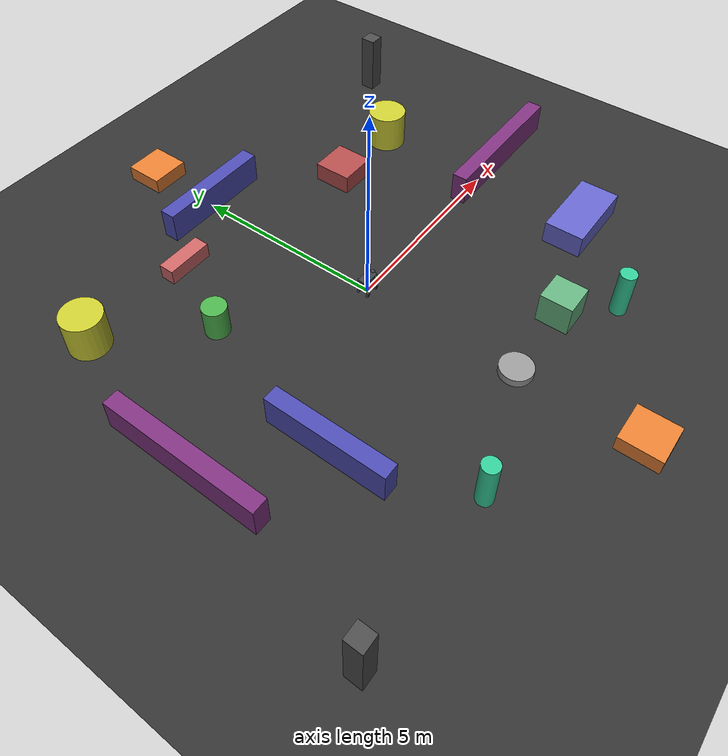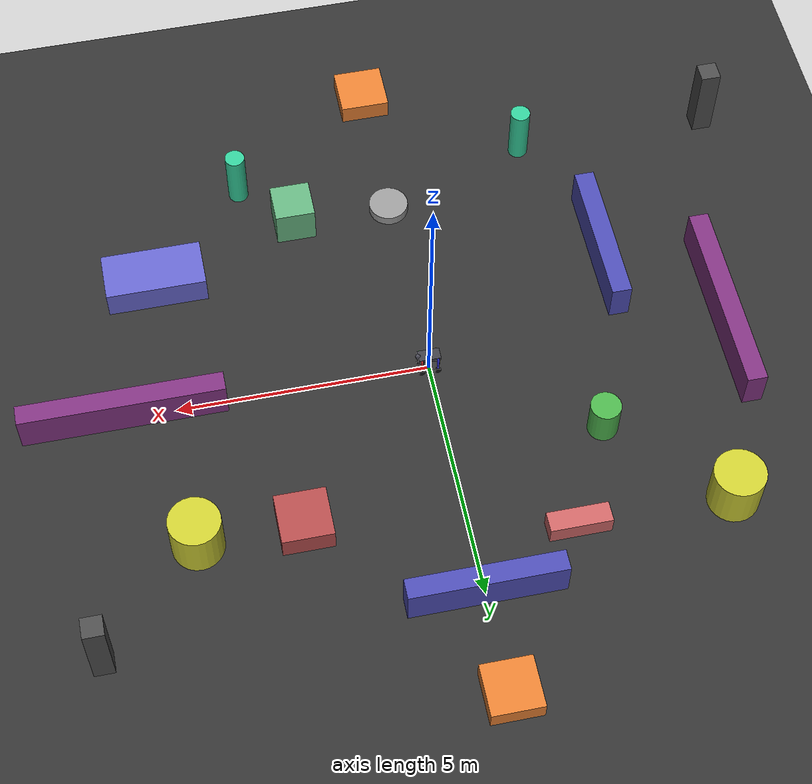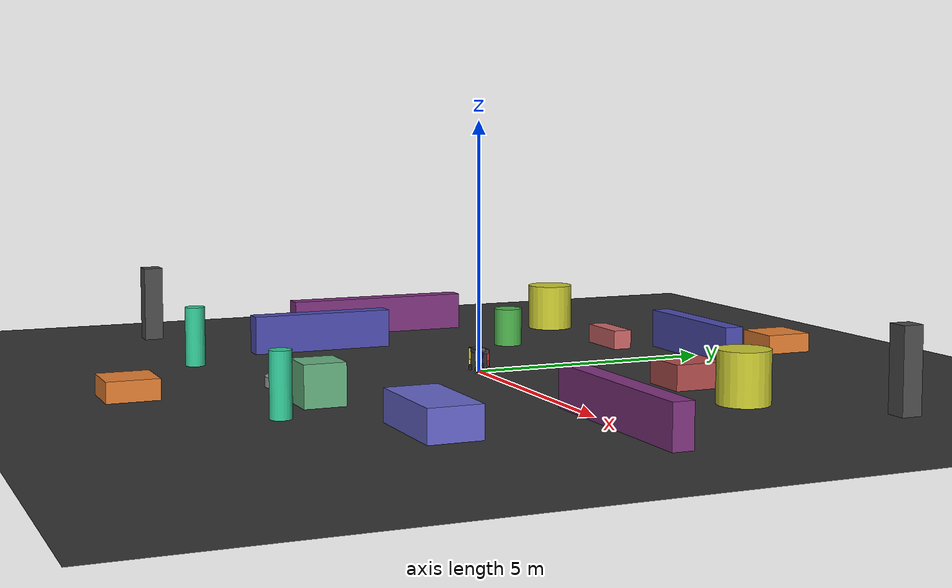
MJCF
<mujoco model="wheeled_dog">
    <compiler angle="radian" inertiafromgeom="true"/>
    <option timestep="0.002" gravity="0 0 -9.81" iterations="100" solver="Newton"/>

    <default>
        <joint limited="true" damping="2.0" armature="0.05" stiffness="0"/>
        <!-- IMPORTANT: contype="0" conaffinity="0" prevents the torso from exploding through the floor -->
        <geom friction="0.8 0.05 0.05" density="500" margin="0.001"
              contype="0" conaffinity="0"/>
    </default>

    <asset>
        <texture type="skybox" builtin="gradient" rgb1="0.3 0.5 0.7" rgb2="0.05 0.05 0.12" width="512" height="512"/>
        <texture name="tex_floor" type="2d" builtin="checker" rgb1="0.25 0.25 0.25" rgb2="0.15 0.15 0.15" width="512" height="512"/>
        <material name="mat_floor" texture="tex_floor" texrepeat="10 10" texuniform="true" reflectance="0.1"/>
    </asset>

    <worldbody>
        <light directional="true" diffuse="0.9 0.9 0.9" specular="0.3 0.3 0.3"
               pos="0 0 5" dir="0 0 -1"/>

        <!-- LANTAI: Tidak tembus karena contype=1 conaffinity=1 dan condim=6 -->
        <geom name="floor" type="plane" size="20 20 0.5" pos="0 0 0"
              material="mat_floor" condim="6" contype="1" conaffinity="1"
              friction="1.2 0.05 0.05" solref="0.01 1" solimp="0.99 0.999 0.001"/>

        <!-- ═══ OBJEK RINTANGAN STATIS (Fix Place & Nempel Lantai) ═══ -->
        <!-- Z-pos diatur persis sama dengan tinggi/half-size agar nempel di lantai -->
        <geom type="box" size="0.5 0.5 0.25" pos="3 3 0.25" rgba="0.7 0.3 0.3 1" contype="1" conaffinity="1"/>
        <geom type="cylinder" size="0.3 0.4" pos="-3 2 0.4" rgba="0.3 0.7 0.3 1" contype="1" conaffinity="1"/>
        <geom type="box" size="1.5 0.2 0.4" pos="0 5 0.4" rgba="0.3 0.3 0.7 1" contype="1" conaffinity="1"/>
        <geom type="box" size="0.2 1.5 0.4" pos="-4 -2 0.4" rgba="0.3 0.3 0.7 1" contype="1" conaffinity="1"/>
        <geom type="cylinder" size="0.4 0.1" pos="0 -4 0.1" rgba="0.6 0.6 0.6 1" contype="1" conaffinity="1"/>
        <geom type="box" size="0.4 0.4 0.4" pos="2 -4 0.4" rgba="0.4 0.7 0.5 1" contype="1" conaffinity="1"/>
        <geom type="box" size="0.6 0.2 0.2" pos="-2 4 0.2" rgba="0.8 0.4 0.4 1" contype="1" conaffinity="1"/>

        <!-- TAMBAHAN BARU: Lorong dan blok tersebar -->
        <geom type="box" size="1.0 0.5 0.3" pos="5 -3 0.3" rgba="0.4 0.4 0.8 1" contype="1" conaffinity="1"/>
        <geom type="cylinder" size="0.5 0.5" pos="5 3 0.5" rgba="0.8 0.8 0.2 1" contype="1" conaffinity="1"/>
        <geom type="cylinder" size="0.5 0.5" pos="-5 4 0.5" rgba="0.8 0.8 0.2 1" contype="1" conaffinity="1"/>
        <geom type="box" size="0.2 2.0 0.4" pos="-6 0 0.4" rgba="0.5 0.2 0.5 1" contype="1" conaffinity="1"/>
        <geom type="box" size="2.0 0.2 0.4" pos="6 0 0.4" rgba="0.5 0.2 0.5 1" contype="1" conaffinity="1"/>
        <geom type="cylinder" size="0.2 0.6" pos="-3 -5 0.6" rgba="0.2 0.8 0.6 1" contype="1" conaffinity="1"/>
        <geom type="cylinder" size="0.2 0.6" pos="3 -5 0.6" rgba="0.2 0.8 0.6 1" contype="1" conaffinity="1"/>
        <geom type="box" size="0.5 0.5 0.2" pos="0 7 0.2" rgba="0.9 0.5 0.2 1" contype="1" conaffinity="1"/>
        <geom type="box" size="0.5 0.5 0.2" pos="0 -7 0.2" rgba="0.9 0.5 0.2 1" contype="1" conaffinity="1"/>
        <geom type="box" size="0.2 0.2 0.8" pos="-7 -5 0.8" rgba="0.3 0.3 0.3 1" contype="1" conaffinity="1"/>
        <geom type="box" size="0.2 0.2 0.8" pos="7 5 0.8" rgba="0.3 0.3 0.3 1" contype="1" conaffinity="1"/>

        <!-- TINGGI SPAWN (z=0.43) agar roda menempel persis di lantai -->
        <body name="torso" pos="0 0 0.43">
            <freejoint name="root"/>

            <!-- COM ANTI JUNGKAL -->
            <inertial pos="0 0 -0.30" mass="5.0" diaginertia="0.1 0.2 0.1"/>

            <geom name="torso_geom" type="box" size="0.22 0.12 0.04"
                  rgba="0.25 0.25 0.28 1" contype="0" conaffinity="0"/>
            <geom name="head_geom" type="sphere" size="0.05" pos="0.22 0 0.03"
                  rgba="0.3 0.3 0.35 1" contype="0" conaffinity="0"/>
            <camera name="front_cam" pos="0.23 0 0.07" xyaxes="0 -1 0 0.1 0 1" fovy="80"/>

            <!-- ═══ KAKI DEPAN KIRI (Front-Left) ═══ -->
            <body name="fl_thigh" pos="0.16 0.13 0">
                <joint name="fl_shoulder" type="hinge" axis="0 1 0"
                       range="-1.2 1.2" damping="3.0"/>
                <geom type="capsule" size="0.025" fromto="0 0 0 0 0 -0.18"
                      rgba="0.8 0.2 0.2 1" contype="0" conaffinity="0"/>
                <body name="fl_shin" pos="0 0 -0.18">
                    <joint name="fl_knee" type="hinge" axis="0 1 0"
                           range="-1.8 0" damping="3.0"/>
                    <geom type="capsule" size="0.02" fromto="0 0 0 0 0 -0.18"
                          rgba="0.9 0.3 0.3 1" contype="0" conaffinity="0"/>
                    <body name="fl_wheel_body" pos="0 0 -0.18">
                        <joint name="fl_wheel" type="hinge" axis="0 1 0"
                               limited="false" damping="0.05" armature="0.01"/>
                        <geom type="cylinder" size="0.06 0.025"
                              quat="0.7071 0.7071 0 0"
                              rgba="0.1 0.1 0.1 1"
                              contype="1" conaffinity="1"
                              friction="1.2 0.05 0.05"/>
                    </body>
                </body>
            </body>

            <!-- ═══ KAKI DEPAN KANAN (Front-Right) ═══ -->
            <body name="fr_thigh" pos="0.16 -0.13 0">
                <joint name="fr_shoulder" type="hinge" axis="0 1 0"
                       range="-1.2 1.2" damping="3.0"/>
                <geom type="capsule" size="0.025" fromto="0 0 0 0 0 -0.18"
                      rgba="0.2 0.8 0.2 1" contype="0" conaffinity="0"/>
                <body name="fr_shin" pos="0 0 -0.18">
                    <joint name="fr_knee" type="hinge" axis="0 1 0"
                           range="-1.8 0" damping="3.0"/>
                    <geom type="capsule" size="0.02" fromto="0 0 0 0 0 -0.18"
                          rgba="0.3 0.9 0.3 1" contype="0" conaffinity="0"/>
                    <body name="fr_wheel_body" pos="0 0 -0.18">
                        <joint name="fr_wheel" type="hinge" axis="0 1 0"
                               limited="false" damping="0.05" armature="0.01"/>
                        <geom type="cylinder" size="0.06 0.025"
                              quat="0.7071 0.7071 0 0"
                              rgba="0.1 0.1 0.1 1"
                              contype="1" conaffinity="1"
                              friction="1.2 0.05 0.05"/>
                    </body>
                </body>
            </body>

            <!-- ═══ KAKI BELAKANG KIRI (Back-Left) ═══ -->
            <body name="bl_thigh" pos="-0.16 0.13 0">
                <joint name="bl_shoulder" type="hinge" axis="0 1 0"
                       range="-1.2 1.2" damping="3.0"/>
                <geom type="capsule" size="0.025" fromto="0 0 0 0 0 -0.18"
                      rgba="0.2 0.2 0.9 1" contype="0" conaffinity="0"/>
                <body name="bl_shin" pos="0 0 -0.18">
                    <joint name="bl_knee" type="hinge" axis="0 1 0"
                           range="-1.8 0" damping="3.0"/>
                    <geom type="capsule" size="0.02" fromto="0 0 0 0 0 -0.18"
                          rgba="0.3 0.3 1.0 1" contype="0" conaffinity="0"/>
                    <body name="bl_wheel_body" pos="0 0 -0.18">
                        <joint name="bl_wheel" type="hinge" axis="0 1 0"
                               limited="false" damping="0.05" armature="0.01"/>
                        <geom type="cylinder" size="0.06 0.025"
                              quat="0.7071 0.7071 0 0"
                              rgba="0.1 0.1 0.1 1"
                              contype="1" conaffinity="1"
                              friction="1.2 0.05 0.05"/>
                    </body>
                </body>
            </body>

            <!-- ═══ KAKI BELAKANG KANAN (Back-Right) ═══ -->
            <body name="br_thigh" pos="-0.16 -0.13 0">
                <joint name="br_shoulder" type="hinge" axis="0 1 0"
                       range="-1.2 1.2" damping="3.0"/>
                <geom type="capsule" size="0.025" fromto="0 0 0 0 0 -0.18"
                      rgba="0.9 0.8 0.1 1" contype="0" conaffinity="0"/>
                <body name="br_shin" pos="0 0 -0.18">
                    <joint name="br_knee" type="hinge" axis="0 1 0"
                           range="-1.8 0" damping="3.0"/>
                    <geom type="capsule" size="0.02" fromto="0 0 0 0 0 -0.18"
                          rgba="1.0 0.9 0.2 1" contype="0" conaffinity="0"/>
                    <body name="br_wheel_body" pos="0 0 -0.18">
                        <joint name="br_wheel" type="hinge" axis="0 1 0"
                               limited="false" damping="0.05" armature="0.01"/>
                        <geom type="cylinder" size="0.06 0.025"
                              quat="0.7071 0.7071 0 0"
                              rgba="0.1 0.1 0.1 1"
                              contype="1" conaffinity="1"
                              friction="1.2 0.05 0.05"/>
                    </body>
                </body>
            </body>
        </body>
    </worldbody>

    <actuator>
        <position name="fl_shoulder_motor" joint="fl_shoulder" kp="300" ctrllimited="true" ctrlrange="-1.2 1.2"/>
        <position name="fr_shoulder_motor" joint="fr_shoulder" kp="300" ctrllimited="true" ctrlrange="-1.2 1.2"/>
        <position name="bl_shoulder_motor" joint="bl_shoulder" kp="300" ctrllimited="true" ctrlrange="-1.2 1.2"/>
        <position name="br_shoulder_motor" joint="br_shoulder" kp="300" ctrllimited="true" ctrlrange="-1.2 1.2"/>

        <position name="fl_knee_motor" joint="fl_knee" kp="300" ctrllimited="true" ctrlrange="-1.8 0"/>
        <position name="fr_knee_motor" joint="fr_knee" kp="300" ctrllimited="true" ctrlrange="-1.8 0"/>
        <position name="bl_knee_motor" joint="bl_knee" kp="300" ctrllimited="true" ctrlrange="-1.8 0"/>
        <position name="br_knee_motor" joint="br_knee" kp="300" ctrllimited="true" ctrlrange="-1.8 0"/>

        <!-- Torsi sedikit dinaikkan ke kv=5 dengan range lebih besar untuk menampung top speed baru -->
        <velocity name="fl_wheel_motor" joint="fl_wheel" kv="5" ctrllimited="true" ctrlrange="-50 50"/>
        <velocity name="fr_wheel_motor" joint="fr_wheel" kv="5" ctrllimited="true" ctrlrange="-50 50"/>
        <velocity name="bl_wheel_motor" joint="bl_wheel" kv="5" ctrllimited="true" ctrlrange="-50 50"/>
        <velocity name="br_wheel_motor" joint="br_wheel" kv="5" ctrllimited="true" ctrlrange="-50 50"/>
    </actuator>

    <keyframe>
        <key name="stand" qpos="0 0 0.43 1 0 0 0   0 0 0 0   0 0 0 0   0 0 0 0"
                          ctrl="0 0 0 0   0 0 0 0   0 0 0 0"/>
    </keyframe>
</mujoco>
